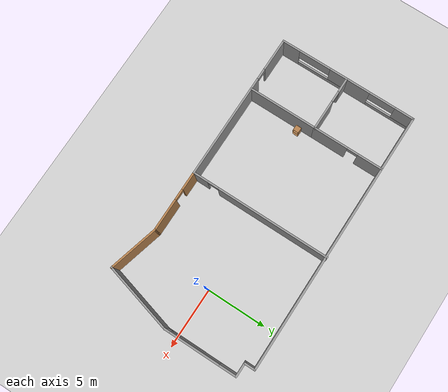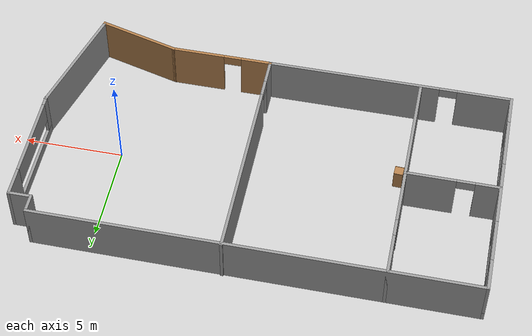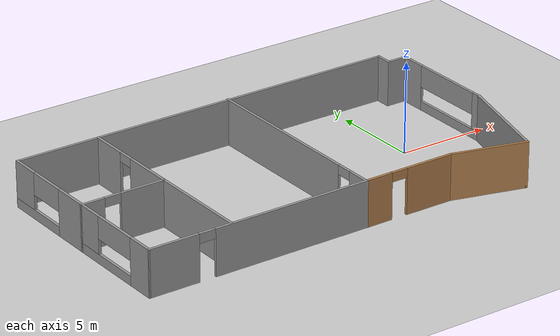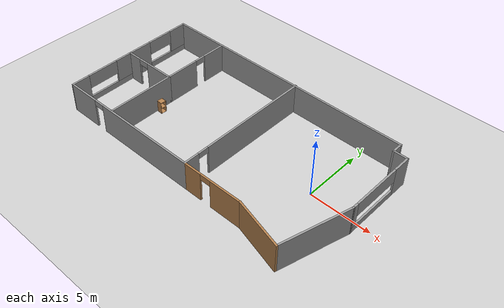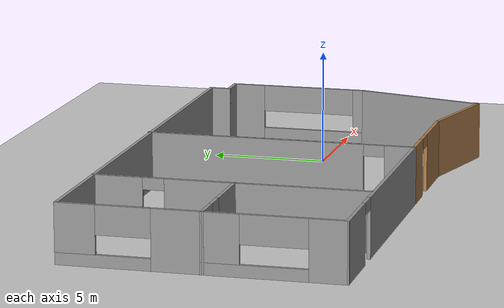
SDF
<sdf version="1.6">
 <world name="default">
  <model name="ground_plane">
   <static>1</static>
   <link name="link">
    <collision name="collision">
     <geometry><plane><normal>0 0 1</normal><size>100 100</size></plane></geometry>
     <surface><friction><ode><mu>100</mu><mu2>50</mu2></ode></friction></surface>
    </collision>
    <visual name="visual">
     <cast_shadows>0</cast_shadows>
     <geometry><plane><normal>0 0 1</normal><size>100 100</size></plane></geometry>
     <material>
      <script><uri>file://media/materials/scripts/gazebo.material</uri><name>Gazebo/Grey</name></script>
     </material>
    </visual>
   </link>
  </model>
  <model name="my_building">
   <pose>-7.47794 -0.2408 0 0 -0 0</pose>
   <link name="Wall_10">
    <collision name="Wall_10_Collision">
     <geometry><box><size>4.25 0.15 2.5</size></box></geometry>
     <pose>0 0 1.25 0 -0 0</pose>
    </collision>
    <visual name="Wall_10_Visual">
     <pose>0 0 1.25 0 -0 0</pose>
     <geometry><box><size>4.25 0.15 2.5</size></box></geometry>
     <material>
      <script><uri>file://media/materials/scripts/gazebo.material</uri><name>Gazebo/Wood</name></script>
      <ambient>1 1 1 1</ambient>
     </material>
     <meta><layer>0</layer></meta>
    </visual>
    <pose>7.9725 -5.79157 0 0 -0 2.87979</pose>
   </link>
   <link name="Wall_11">
    <pose>3.44235 -5.26099 0 0 -0 3.14159</pose>
    <visual name="Wall_11_Visual_0">
     <pose>-1.24785 0 1.25 0 -0 0</pose>
     <geometry><box><size>2.7543 0.15 2.5</size></box></geometry>
     <material>
      <script><uri>file://media/materials/scripts/gazebo.material</uri><name>Gazebo/Wood</name></script>
      <ambient>1 1 1 1</ambient>
     </material>
     <meta><layer>0</layer></meta>
    </visual>
    <collision name="Wall_11_Collision_0">
     <geometry><box><size>2.7543 0.15 2.5</size></box></geometry>
     <pose>-1.24785 0 1.25 0 -0 0</pose>
    </collision>
    <visual name="Wall_11_Visual_1">
     <pose>1.82715 0 1.25 0 -0 0</pose>
     <geometry><box><size>1.5957 0.15 2.5</size></box></geometry>
     <material>
      <script><uri>file://media/materials/scripts/gazebo.material</uri><name>Gazebo/Wood</name></script>
      <ambient>1 1 1 1</ambient>
     </material>
     <meta><layer>0</layer></meta>
    </visual>
    <collision name="Wall_11_Collision_1">
     <geometry><box><size>1.5957 0.15 2.5</size></box></geometry>
     <pose>1.82715 0 1.25 0 -0 0</pose>
    </collision>
    <visual name="Wall_11_Visual_2">
     <pose>0.579298 0 2.25 0 -0 0</pose>
     <geometry><box><size>0.9 0.15 0.5</size></box></geometry>
     <material>
      <script><uri>file://media/materials/scripts/gazebo.material</uri><name>Gazebo/Wood</name></script>
      <ambient>1 1 1 1</ambient>
     </material>
     <meta><layer>0</layer></meta>
    </visual>
    <collision name="Wall_11_Collision_2">
     <geometry><box><size>0.9 0.15 0.5</size></box></geometry>
     <pose>0.579298 0 2.25 0 -0 0</pose>
    </collision>
   </link>
   <link name="Wall_12">
    <pose>0.892353 0.539007 0 0 -0 1.5708</pose>
    <visual name="Wall_12_Visual_0">
     <pose>-5.20647 0 1.25 0 -0 0</pose>
     <geometry><box><size>1.33705 0.15 2.5</size></box></geometry>
     <material>
      <script><uri>file://media/materials/scripts/gazebo.material</uri><name>Gazebo/Grey</name></script>
      <ambient>1 1 1 1</ambient>
     </material>
     <meta><layer>0</layer></meta>
    </visual>
    <collision name="Wall_12_Collision_0">
     <geometry><box><size>1.33705 0.15 2.5</size></box></geometry>
     <pose>-5.20647 0 1.25 0 -0 0</pose>
    </collision>
    <visual name="Wall_12_Visual_1">
     <pose>1.11853 0 1.25 0 -0 0</pose>
     <geometry><box><size>9.51295 0.15 2.5</size></box></geometry>
     <material>
      <script><uri>file://media/materials/scripts/gazebo.material</uri><name>Gazebo/Grey</name></script>
      <ambient>1 1 1 1</ambient>
     </material>
     <meta><layer>0</layer></meta>
    </visual>
    <collision name="Wall_12_Collision_1">
     <geometry><box><size>9.51295 0.15 2.5</size></box></geometry>
     <pose>1.11853 0 1.25 0 -0 0</pose>
    </collision>
    <visual name="Wall_12_Visual_2">
     <pose>-4.08795 0 2.25 0 -0 0</pose>
     <geometry><box><size>0.9 0.15 0.5</size></box></geometry>
     <material>
      <script><uri>file://media/materials/scripts/gazebo.material</uri><name>Gazebo/Grey</name></script>
      <ambient>1 1 1 1</ambient>
     </material>
     <meta><layer>0</layer></meta>
    </visual>
    <collision name="Wall_12_Collision_2">
     <geometry><box><size>0.9 0.15 0.5</size></box></geometry>
     <pose>-4.08795 0 2.25 0 -0 0</pose>
    </collision>
   </link>
   <link name="Wall_14">
    <pose>-5.28265 -5.26099 0 0 -0 3.14159</pose>
    <visual name="Wall_14_Visual_0">
     <pose>-1.85156 0 1.25 0 -0 0</pose>
     <geometry><box><size>8.79688 0.15 2.5</size></box></geometry>
     <material>
      <script><uri>file://media/materials/scripts/gazebo.material</uri><name>Gazebo/Grey</name></script>
      <ambient>1 1 1 1</ambient>
     </material>
     <meta><layer>0</layer></meta>
    </visual>
    <collision name="Wall_14_Collision_0">
     <geometry><box><size>8.79688 0.15 2.5</size></box></geometry>
     <pose>-1.85156 0 1.25 0 -0 0</pose>
    </collision>
    <visual name="Wall_14_Visual_1">
     <pose>4.84844 0 1.25 0 -0 0</pose>
     <geometry><box><size>2.80312 0.15 2.5</size></box></geometry>
     <material>
      <script><uri>file://media/materials/scripts/gazebo.material</uri><name>Gazebo/Grey</name></script>
      <ambient>1 1 1 1</ambient>
     </material>
     <meta><layer>0</layer></meta>
    </visual>
    <collision name="Wall_14_Collision_1">
     <geometry><box><size>2.80312 0.15 2.5</size></box></geometry>
     <pose>4.84844 0 1.25 0 -0 0</pose>
    </collision>
    <visual name="Wall_14_Visual_2">
     <pose>2.99688 0 2.25 0 -0 0</pose>
     <geometry><box><size>0.9 0.15 0.5</size></box></geometry>
     <material>
      <script><uri>file://media/materials/scripts/gazebo.material</uri><name>Gazebo/Grey</name></script>
      <ambient>1 1 1 1</ambient>
     </material>
     <meta><layer>0</layer></meta>
    </visual>
    <collision name="Wall_14_Collision_2">
     <geometry><box><size>0.9 0.15 0.5</size></box></geometry>
     <pose>2.99688 0 2.25 0 -0 0</pose>
    </collision>
   </link>
   <link name="Wall_15">
    <pose>-11.4705 -2.41624 0 0 -0 1.5753</pose>
    <visual name="Wall_15_Visual_0">
     <pose>-2.13567 0 1.25 0 -0 0</pose>
     <geometry><box><size>1.56823 0.15 2.5</size></box></geometry>
     <material>
      <script><uri>file://media/materials/scripts/gazebo.material</uri><name>Gazebo/Grey</name></script>
      <ambient>1 1 1 1</ambient>
     </material>
     <meta><layer>0</layer></meta>
    </visual>
    <collision name="Wall_15_Collision_0">
     <geometry><box><size>1.56823 0.15 2.5</size></box></geometry>
     <pose>-2.13567 0 1.25 0 -0 0</pose>
    </collision>
    <visual name="Wall_15_Visual_1">
     <pose>0.784114 0 0.25 0 -0 0</pose>
     <geometry><box><size>4.27134 0.15 0.5</size></box></geometry>
     <material>
      <script><uri>file://media/materials/scripts/gazebo.material</uri><name>Gazebo/Grey</name></script>
      <ambient>1 1 1 1</ambient>
     </material>
     <meta><layer>0</layer></meta>
    </visual>
    <collision name="Wall_15_Collision_1">
     <geometry><box><size>4.27134 0.15 0.5</size></box></geometry>
     <pose>0.784114 0 0.25 0 -0 0</pose>
    </collision>
    <visual name="Wall_15_Visual_2">
     <pose>2.14219 0 1.5 0 -0 0</pose>
     <geometry><box><size>1.55519 0.15 2</size></box></geometry>
     <material>
      <script><uri>file://media/materials/scripts/gazebo.material</uri><name>Gazebo/Grey</name></script>
      <ambient>1 1 1 1</ambient>
     </material>
     <meta><layer>0</layer></meta>
    </visual>
    <collision name="Wall_15_Collision_2">
     <geometry><box><size>1.55519 0.15 2</size></box></geometry>
     <pose>2.14219 0 1.5 0 -0 0</pose>
    </collision>
    <visual name="Wall_15_Visual_3">
     <pose>0.006522 0 1.9 0 -0 0</pose>
     <geometry><box><size>2.71615 0.15 1.2</size></box></geometry>
     <material>
      <script><uri>file://media/materials/scripts/gazebo.material</uri><name>Gazebo/Grey</name></script>
      <ambient>1 1 1 1</ambient>
     </material>
     <meta><layer>0</layer></meta>
    </visual>
    <collision name="Wall_15_Collision_3">
     <geometry><box><size>2.71615 0.15 1.2</size></box></geometry>
     <pose>0.006522 0 1.9 0 -0 0</pose>
    </collision>
   </link>
   <link name="Wall_16">
    <pose>-9.18326 0.428515 0 0 -0 0</pose>
    <visual name="Wall_16_Visual_0">
     <pose>-1.72713 0 1.25 0 -0 0</pose>
     <geometry><box><size>1.29574 0.15 2.5</size></box></geometry>
     <material>
      <script><uri>file://media/materials/scripts/gazebo.material</uri><name>Gazebo/Grey</name></script>
      <ambient>1 1 1 1</ambient>
     </material>
     <meta><layer>0</layer></meta>
    </visual>
    <collision name="Wall_16_Collision_0">
     <geometry><box><size>1.29574 0.15 2.5</size></box></geometry>
     <pose>-1.72713 0 1.25 0 -0 0</pose>
    </collision>
    <visual name="Wall_16_Visual_1">
     <pose>1.09787 0 1.25 0 -0 0</pose>
     <geometry><box><size>2.55426 0.15 2.5</size></box></geometry>
     <material>
      <script><uri>file://media/materials/scripts/gazebo.material</uri><name>Gazebo/Grey</name></script>
      <ambient>1 1 1 1</ambient>
     </material>
     <meta><layer>0</layer></meta>
    </visual>
    <collision name="Wall_16_Collision_1">
     <geometry><box><size>2.55426 0.15 2.5</size></box></geometry>
     <pose>1.09787 0 1.25 0 -0 0</pose>
    </collision>
    <visual name="Wall_16_Visual_2">
     <pose>-0.629257 0 2.25 0 -0 0</pose>
     <geometry><box><size>0.9 0.15 0.5</size></box></geometry>
     <material>
      <script><uri>file://media/materials/scripts/gazebo.material</uri><name>Gazebo/Grey</name></script>
      <ambient>1 1 1 1</ambient>
     </material>
     <meta><layer>0</layer></meta>
    </visual>
    <collision name="Wall_16_Collision_2">
     <geometry><box><size>0.9 0.15 0.5</size></box></geometry>
     <pose>-0.629257 0 2.25 0 -0 0</pose>
    </collision>
   </link>
   <link name="Wall_17">
    <pose>-6.88326 3.35351 0 0 -0 1.5708</pose>
    <visual name="Wall_17_Visual_0">
     <pose>-1.52159 0 1.25 0 -0 0</pose>
     <geometry><box><size>2.95682 0.15 2.5</size></box></geometry>
     <material>
      <script><uri>file://media/materials/scripts/gazebo.material</uri><name>Gazebo/Grey</name></script>
      <ambient>1 1 1 1</ambient>
     </material>
     <meta><layer>0</layer></meta>
    </visual>
    <collision name="Wall_17_Collision_0">
     <geometry><box><size>2.95682 0.15 2.5</size></box></geometry>
     <pose>-1.52159 0 1.25 0 -0 0</pose>
    </collision>
    <visual name="Wall_17_Visual_1">
     <pose>1.92841 0 1.25 0 -0 0</pose>
     <geometry><box><size>2.14318 0.15 2.5</size></box></geometry>
     <material>
      <script><uri>file://media/materials/scripts/gazebo.material</uri><name>Gazebo/Grey</name></script>
      <ambient>1 1 1 1</ambient>
     </material>
     <meta><layer>0</layer></meta>
    </visual>
    <collision name="Wall_17_Collision_1">
     <geometry><box><size>2.14318 0.15 2.5</size></box></geometry>
     <pose>1.92841 0 1.25 0 -0 0</pose>
    </collision>
    <visual name="Wall_17_Visual_2">
     <pose>0.406817 0 2.25 0 -0 0</pose>
     <geometry><box><size>0.9 0.15 0.5</size></box></geometry>
     <material>
      <script><uri>file://media/materials/scripts/gazebo.material</uri><name>Gazebo/Grey</name></script>
      <ambient>1 1 1 1</ambient>
     </material>
     <meta><layer>0</layer></meta>
    </visual>
    <collision name="Wall_17_Collision_2">
     <geometry><box><size>0.9 0.15 0.5</size></box></geometry>
     <pose>0.406817 0 2.25 0 -0 0</pose>
    </collision>
   </link>
   <link name="Wall_19">
    <collision name="Wall_19_Collision">
     <geometry><box><size>5.75 0.15 2.5</size></box></geometry>
     <pose>0 0 1.25 0 -0 0</pose>
    </collision>
    <visual name="Wall_19_Visual">
     <pose>0 0 1.25 0 -0 0</pose>
     <geometry><box><size>5.75 0.15 2.5</size></box></geometry>
     <material>
      <script><uri>file://media/materials/scripts/gazebo.material</uri><name>Gazebo/Grey</name></script>
      <ambient>1 1 1 1</ambient>
     </material>
     <meta><layer>0</layer></meta>
    </visual>
    <pose>-6.88326 -2.37148 0 0 0 -1.5708</pose>
   </link>
   <link name="Wall_3">
    <pose>-11.4833 3.35351 0 0 -0 1.5708</pose>
    <visual name="Wall_3_Visual_0">
     <pose>-1.94784 0 1.25 0 -0 0</pose>
     <geometry><box><size>2.10432 0.15 2.5</size></box></geometry>
     <material>
      <script><uri>file://media/materials/scripts/gazebo.material</uri><name>Gazebo/Grey</name></script>
      <ambient>1 1 1 1</ambient>
     </material>
     <meta><layer>0</layer></meta>
    </visual>
    <collision name="Wall_3_Collision_0">
     <geometry><box><size>2.10432 0.15 2.5</size></box></geometry>
     <pose>-1.94784 0 1.25 0 -0 0</pose>
    </collision>
    <visual name="Wall_3_Visual_1">
     <pose>1.05216 0 0.25 0 -0 0</pose>
     <geometry><box><size>3.89568 0.15 0.5</size></box></geometry>
     <material>
      <script><uri>file://media/materials/scripts/gazebo.material</uri><name>Gazebo/Grey</name></script>
      <ambient>1 1 1 1</ambient>
     </material>
     <meta><layer>0</layer></meta>
    </visual>
    <collision name="Wall_3_Collision_1">
     <geometry><box><size>3.89568 0.15 0.5</size></box></geometry>
     <pose>1.05216 0 0.25 0 -0 0</pose>
    </collision>
    <visual name="Wall_3_Visual_2">
     <pose>2.17037 0 1.5 0 -0 0</pose>
     <geometry><box><size>1.65927 0.15 2</size></box></geometry>
     <material>
      <script><uri>file://media/materials/scripts/gazebo.material</uri><name>Gazebo/Grey</name></script>
      <ambient>1 1 1 1</ambient>
     </material>
     <meta><layer>0</layer></meta>
    </visual>
    <collision name="Wall_3_Collision_2">
     <geometry><box><size>1.65927 0.15 2</size></box></geometry>
     <pose>2.17037 0 1.5 0 -0 0</pose>
    </collision>
    <visual name="Wall_3_Visual_3">
     <pose>0.222526 0 1.9 0 -0 0</pose>
     <geometry><box><size>2.23641 0.15 1.2</size></box></geometry>
     <material>
      <script><uri>file://media/materials/scripts/gazebo.material</uri><name>Gazebo/Grey</name></script>
      <ambient>1 1 1 1</ambient>
     </material>
     <meta><layer>0</layer></meta>
    </visual>
    <collision name="Wall_3_Collision_3">
     <geometry><box><size>2.23641 0.15 1.2</size></box></geometry>
     <pose>0.222526 0 1.9 0 -0 0</pose>
    </collision>
   </link>
   <link name="Wall_4">
    <collision name="Wall_4_Collision">
     <geometry><box><size>22 0.15 2.5</size></box></geometry>
     <pose>0 0 1.25 0 -0 0</pose>
    </collision>
    <visual name="Wall_4_Visual">
     <pose>0 0 1.25 0 -0 0</pose>
     <geometry><box><size>22 0.15 2.5</size></box></geometry>
     <material>
      <script><uri>file://media/materials/scripts/gazebo.material</uri><name>Gazebo/Grey</name></script>
      <ambient>1 1 1 1</ambient>
     </material>
     <meta><layer>0</layer></meta>
    </visual>
    <pose>-0.55826 6.27851 0 0 -0 0</pose>
   </link>
   <link name="Wall_5">
    <collision name="Wall_5_Collision">
     <geometry><box><size>1 0.15 2.5</size></box></geometry>
     <pose>0 0 1.25 0 -0 0</pose>
    </collision>
    <visual name="Wall_5_Visual">
     <pose>0 0 1.25 0 -0 0</pose>
     <geometry><box><size>1 0.15 2.5</size></box></geometry>
     <material>
      <script><uri>file://media/materials/scripts/gazebo.material</uri><name>Gazebo/Grey</name></script>
      <ambient>1 1 1 1</ambient>
     </material>
     <meta><layer>0</layer></meta>
    </visual>
    <pose>10.3667 5.85351 0 0 0 -1.5708</pose>
   </link>
   <link name="Wall_6">
    <collision name="Wall_6_Collision">
     <geometry><box><size>1.25 0.15 2.5</size></box></geometry>
     <pose>0 0 1.25 0 -0 0</pose>
    </collision>
    <visual name="Wall_6_Visual">
     <pose>0 0 1.25 0 -0 0</pose>
     <geometry><box><size>1.25 0.15 2.5</size></box></geometry>
     <material>
      <script><uri>file://media/materials/scripts/gazebo.material</uri><name>Gazebo/Grey</name></script>
      <ambient>1 1 1 1</ambient>
     </material>
     <meta><layer>0</layer></meta>
    </visual>
    <pose>10.9167 5.42851 0 0 -0 0</pose>
   </link>
   <link name="Wall_7">
    <pose>11.4667 2.37852 0 0 0 -1.5708</pose>
    <visual name="Wall_7_Visual_0">
     <pose>-2.36674 0 1.25 0 -0 0</pose>
     <geometry><box><size>1.51652 0.15 2.5</size></box></geometry>
     <material>
      <script><uri>file://media/materials/scripts/gazebo.material</uri><name>Gazebo/Grey</name></script>
      <ambient>1 1 1 1</ambient>
     </material>
     <meta><layer>0</layer></meta>
    </visual>
    <collision name="Wall_7_Collision_0">
     <geometry><box><size>1.51652 0.15 2.5</size></box></geometry>
     <pose>-2.36674 0 1.25 0 -0 0</pose>
    </collision>
    <visual name="Wall_7_Visual_1">
     <pose>0.758258 0 0.25 0 -0 0</pose>
     <geometry><box><size>4.73348 0.15 0.5</size></box></geometry>
     <material>
      <script><uri>file://media/materials/scripts/gazebo.material</uri><name>Gazebo/Grey</name></script>
      <ambient>1 1 1 1</ambient>
     </material>
     <meta><layer>0</layer></meta>
    </visual>
    <collision name="Wall_7_Collision_1">
     <geometry><box><size>4.73348 0.15 0.5</size></box></geometry>
     <pose>0.758258 0 0.25 0 -0 0</pose>
    </collision>
    <visual name="Wall_7_Visual_2">
     <pose>2.85836 0 1.5 0 -0 0</pose>
     <geometry><box><size>0.533285 0.15 2</size></box></geometry>
     <material>
      <script><uri>file://media/materials/scripts/gazebo.material</uri><name>Gazebo/Grey</name></script>
      <ambient>1 1 1 1</ambient>
     </material>
     <meta><layer>0</layer></meta>
    </visual>
    <collision name="Wall_7_Collision_2">
     <geometry><box><size>0.533285 0.15 2</size></box></geometry>
     <pose>2.85836 0 1.5 0 -0 0</pose>
    </collision>
    <visual name="Wall_7_Visual_3">
     <pose>0.491615 0 1.9 0 -0 0</pose>
     <geometry><box><size>4.2002 0.15 1.2</size></box></geometry>
     <material>
      <script><uri>file://media/materials/scripts/gazebo.material</uri><name>Gazebo/Grey</name></script>
      <ambient>1 1 1 1</ambient>
     </material>
     <meta><layer>0</layer></meta>
    </visual>
    <collision name="Wall_7_Collision_3">
     <geometry><box><size>4.2002 0.15 1.2</size></box></geometry>
     <pose>0.491615 0 1.9 0 -0 0</pose>
    </collision>
   </link>
   <link name="Wall_9">
    <collision name="Wall_9_Collision">
     <geometry><box><size>6 0.15 2.5</size></box></geometry>
     <pose>0 0 1.25 0 -0 0</pose>
    </collision>
    <visual name="Wall_9_Visual">
     <pose>0 0 1.25 0 -0 0</pose>
     <geometry><box><size>6 0.15 2.5</size></box></geometry>
     <material>
      <script><uri>file://media/materials/scripts/gazebo.material</uri><name>Gazebo/Grey</name></script>
      <ambient>1 1 1 1</ambient>
     </material>
     <meta><layer>0</layer></meta>
    </visual>
    <pose>10.7097 -3.49682 0 0 0 -1.8326</pose>
   </link>
   <static>1</static>
  </model>
  <model name="cabinet_1">
   <static>1</static>
   <link name="cabinet_bottom_plate">
    <inertial>
     <pose>0 0 -1 0 -0 0</pose>
     <inertia><ixx>2.05</ixx><ixy>0</ixy><ixz>0</ixz><iyy>2.05</iyy><iyz>0</iyz><izz>2.05</izz></inertia>
     <mass>25</mass>
    </inertial>
    <collision name="cabinet_bottom_plate_geom">
     <pose>0 0 0.01 0 -0 0</pose>
     <geometry><box><size>0.45 0.45 0.02</size></box></geometry>
    </collision>
    <visual name="cabinet_bottom_plate_geom_visual">
     <pose>0 0 0.01 0 -0 0</pose>
     <geometry><box><size>0.45 0.45 0.02</size></box></geometry>
     <material>
      <script><uri>file://media/materials/scripts/gazebo.material</uri><name>Gazebo/Wood</name></script>
     </material>
    </visual>
    <collision name="cabinet_bottom_plate_geom_cabinet_back_plate">
     <pose>0.235 0 0.51 0 -0 0</pose>
     <geometry><box><size>0.02 0.45 1.02</size></box></geometry>
    </collision>
    <visual name="cabinet_bottom_plate_geom_cabinet_back_plate_visual">
     <pose>0.235 0 0.51 0 -0 0</pose>
     <geometry><box><size>0.02 0.45 1.02</size></box></geometry>
     <material>
      <script><uri>file://media/materials/scripts/gazebo.material</uri><name>Gazebo/Wood</name></script>
     </material>
    </visual>
    <collision name="cabinet_bottom_plate_geom_cabinet_left_plate">
     <pose>0 0.235 0.51 0 -0 0</pose>
     <geometry><box><size>0.45 0.02 1.02</size></box></geometry>
    </collision>
    <visual name="cabinet_bottom_plate_geom_cabinet_left_plate_visual">
     <pose>0 0.235 0.51 0 -0 0</pose>
     <geometry><box><size>0.45 0.02 1.02</size></box></geometry>
     <material>
      <script><uri>file://media/materials/scripts/gazebo.material</uri><name>Gazebo/Wood</name></script>
     </material>
    </visual>
    <collision name="cabinet_bottom_plate_geom_cabinet_middle_plate">
     <pose>0 0 0.51 0 -0 0</pose>
     <geometry><box><size>0.45 0.45 0.02</size></box></geometry>
    </collision>
    <visual name="cabinet_bottom_plate_geom_cabinet_middle_plate_visual">
     <pose>0 0 0.51 0 -0 0</pose>
     <geometry><box><size>0.45 0.45 0.02</size></box></geometry>
     <material>
      <script><uri>file://media/materials/scripts/gazebo.material</uri><name>Gazebo/Wood</name></script>
     </material>
    </visual>
    <collision name="cabinet_bottom_plate_geom_cabinet_right_plate">
     <pose>0 -0.235 0.51 0 -0 0</pose>
     <geometry><box><size>0.45 0.02 1.02</size></box></geometry>
    </collision>
    <visual name="cabinet_bottom_plate_geom_cabinet_right_plate_visual">
     <pose>0 -0.235 0.51 0 -0 0</pose>
     <geometry><box><size>0.45 0.02 1.02</size></box></geometry>
     <material>
      <script><uri>file://media/materials/scripts/gazebo.material</uri><name>Gazebo/Wood</name></script>
     </material>
    </visual>
    <collision name="cabinet_bottom_plate_geom_cabinet_top_plate">
     <pose>0 0 1.01 0 -0 0</pose>
     <geometry><box><size>0.45 0.45 0.02</size></box></geometry>
    </collision>
    <visual name="cabinet_bottom_plate_geom_cabinet_top_plate_visual">
     <pose>0 0 1.01 0 -0 0</pose>
     <geometry><box><size>0.45 0.45 0.02</size></box></geometry>
     <material>
      <script><uri>file://media/materials/scripts/gazebo.material</uri><name>Gazebo/Wood</name></script>
     </material>
    </visual>
   </link>
   <pose>-13.9924 -1.03841 0 0 -0 3.08457</pose>
  </model>
 </world>
</sdf>
